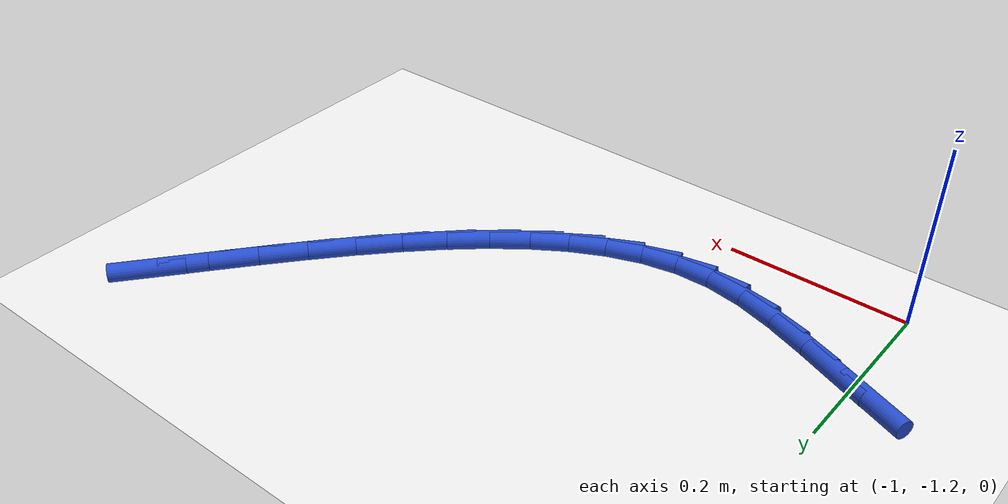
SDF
<sdf version="1.6">
 <world name="default">
  <model name="ground_plane">
   <static>1</static>
   <link name="link">
    <collision name="collision">
     <geometry><plane><normal>0 0 1</normal><size>100 100</size></plane></geometry>
     <surface><friction><ode><mu>100</mu><mu2>50</mu2></ode></friction></surface>
    </collision>
    <visual name="visual">
     <cast_shadows>0</cast_shadows>
     <geometry><plane><normal>0 0 1</normal><size>100 100</size></plane></geometry>
     <material>
      <script><uri>file://media/materials/scripts/gazebo.material</uri><name>Gazebo/WhiteGlow</name></script>
     </material>
    </visual>
   </link>
  </model>
  <model name="line">
   <link name="link_113">
    <pose>-1.0262186633941555 -1.0594914611491453 0.01 0 1.57 -0.38304598263410267</pose>
    <collision name="collision">
     <geometry><cylinder><radius>0.01</radius><length>0.08</length></cylinder></geometry>
    </collision>
    <visual name="visual">
     <material>
      <script><name>Gazebo/Blue</name><uri>file://media/materials/scripts/gazebo.material</uri></script>
     </material>
     <geometry><cylinder><radius>0.01</radius><length>0.08</length></cylinder></geometry>
    </visual>
   </link>
   <link name="link_114">
    <pose>-0.9823153233614119 -1.077182265671292 0.01 0 1.57 -0.38975727046481573</pose>
    <collision name="collision">
     <geometry><cylinder><radius>0.01</radius><length>0.08</length></cylinder></geometry>
    </collision>
    <visual name="visual">
     <material>
      <script><name>Gazebo/Blue</name><uri>file://media/materials/scripts/gazebo.material</uri></script>
     </material>
     <geometry><cylinder><radius>0.01</radius><length>0.08</length></cylinder></geometry>
    </visual>
   </link>
   <link name="link_115">
    <pose>-0.9395639641799146 -1.0947432928200607 0.01 0 1.57 -0.3577677357357396</pose>
    <collision name="collision">
     <geometry><cylinder><radius>0.01</radius><length>0.08</length></cylinder></geometry>
    </collision>
    <visual name="visual">
     <material>
      <script><name>Gazebo/Blue</name><uri>file://media/materials/scripts/gazebo.material</uri></script>
     </material>
     <geometry><cylinder><radius>0.01</radius><length>0.08</length></cylinder></geometry>
    </visual>
   </link>
   <link name="link_116">
    <pose>-0.8978378984906935 -1.11034285192403 0.01 0 1.57 -0.2814989614357672</pose>
    <collision name="collision">
     <geometry><cylinder><radius>0.01</radius><length>0.08</length></cylinder></geometry>
    </collision>
    <visual name="visual">
     <material>
      <script><name>Gazebo/Blue</name><uri>file://media/materials/scripts/gazebo.material</uri></script>
     </material>
     <geometry><cylinder><radius>0.01</radius><length>0.08</length></cylinder></geometry>
    </visual>
   </link>
   <link name="link_117">
    <pose>-0.8570104389347777 -1.1221492523117789 0.01 0 1.57 -0.15311657350316368</pose>
    <collision name="collision">
     <geometry><cylinder><radius>0.01</radius><length>0.08</length></cylinder></geometry>
    </collision>
    <visual name="visual">
     <material>
      <script><name>Gazebo/Blue</name><uri>file://media/materials/scripts/gazebo.material</uri></script>
     </material>
     <geometry><cylinder><radius>0.01</radius><length>0.08</length></cylinder></geometry>
    </visual>
   </link>
   <link name="link_118">
    <pose>-0.816954898153194 -1.1283308033118857 0.01 0 1.57 0.02256877334419839</pose>
    <collision name="collision">
     <geometry><cylinder><radius>0.01</radius><length>0.08</length></cylinder></geometry>
    </collision>
    <visual name="visual">
     <material>
      <script><name>Gazebo/Blue</name><uri>file://media/materials/scripts/gazebo.material</uri></script>
     </material>
     <geometry><cylinder><radius>0.01</radius><length>0.08</length></cylinder></geometry>
    </visual>
   </link>
   <link name="link_119">
    <pose>-0.7775631024608815 -1.1274416278311206 0.01 0 1.57 0.19732239984752878</pose>
    <collision name="collision">
     <geometry><cylinder><radius>0.01</radius><length>0.08</length></cylinder></geometry>
    </collision>
    <visual name="visual">
     <material>
      <script><name>Gazebo/Blue</name><uri>file://media/materials/scripts/gazebo.material</uri></script>
     </material>
     <geometry><cylinder><radius>0.01</radius><length>0.08</length></cylinder></geometry>
    </visual>
   </link>
   <link name="link_120">
    <pose>-0.7388064097582429 -1.1196932381047695 0.01 0 1.57 0.3507635997212483</pose>
    <collision name="collision">
     <geometry><cylinder><radius>0.01</radius><length>0.08</length></cylinder></geometry>
    </collision>
    <visual name="visual">
     <material>
      <script><name>Gazebo/Blue</name><uri>file://media/materials/scripts/gazebo.material</uri></script>
     </material>
     <geometry><cylinder><radius>0.01</radius><length>0.08</length></cylinder></geometry>
    </visual>
   </link>
   <link name="link_121">
    <pose>-0.7006775298330765 -1.105742106569806 0.01 0 1.57 0.4793734201751002</pose>
    <collision name="collision">
     <geometry><cylinder><radius>0.01</radius><length>0.08</length></cylinder></geometry>
    </collision>
    <visual name="visual">
     <material>
      <script><name>Gazebo/Blue</name><uri>file://media/materials/scripts/gazebo.material</uri></script>
     </material>
     <geometry><cylinder><radius>0.01</radius><length>0.08</length></cylinder></geometry>
    </visual>
   </link>
   <link name="link_122">
    <pose>-0.663169172740629 -1.0862447112366598 0.01 0 1.57 0.5840599042252862</pose>
    <collision name="collision">
     <geometry><cylinder><radius>0.01</radius><length>0.08</length></cylinder></geometry>
    </collision>
    <visual name="visual">
     <material>
      <script><name>Gazebo/Blue</name><uri>file://media/materials/scripts/gazebo.material</uri></script>
     </material>
     <geometry><cylinder><radius>0.01</radius><length>0.08</length></cylinder></geometry>
    </visual>
   </link>
   <link name="link_123">
    <pose>-0.6262740485361447 -1.0618575301157578 0.01 0 1.57 0.6677992249285715</pose>
    <collision name="collision">
     <geometry><cylinder><radius>0.01</radius><length>0.08</length></cylinder></geometry>
    </collision>
    <visual name="visual">
     <material>
      <script><name>Gazebo/Blue</name><uri>file://media/materials/scripts/gazebo.material</uri></script>
     </material>
     <geometry><cylinder><radius>0.01</radius><length>0.08</length></cylinder></geometry>
    </visual>
   </link>
   <link name="link_124">
    <pose>-0.58998486727487 -1.0332370412175298 0.01 0 1.57 0.7339879084121903</pose>
    <collision name="collision">
     <geometry><cylinder><radius>0.01</radius><length>0.08</length></cylinder></geometry>
    </collision>
    <visual name="visual">
     <material>
      <script><name>Gazebo/Blue</name><uri>file://media/materials/scripts/gazebo.material</uri></script>
     </material>
     <geometry><cylinder><radius>0.01</radius><length>0.08</length></cylinder></geometry>
    </visual>
   </link>
   <link name="link_125">
    <pose>-0.5542943390120514 -1.001039722552405 0.01 0 1.57 0.7856617072026032</pose>
    <collision name="collision">
     <geometry><cylinder><radius>0.01</radius><length>0.08</length></cylinder></geometry>
    </collision>
    <visual name="visual">
     <material>
      <script><name>Gazebo/Blue</name><uri>file://media/materials/scripts/gazebo.material</uri></script>
     </material>
     <geometry><cylinder><radius>0.01</radius><length>0.08</length></cylinder></geometry>
    </visual>
   </link>
   <link name="link_126">
    <pose>-0.5191951738029336 -0.9659220521308107 0.01 0 1.57 0.8252461295931426</pose>
    <collision name="collision">
     <geometry><cylinder><radius>0.01</radius><length>0.08</length></cylinder></geometry>
    </collision>
    <visual name="visual">
     <material>
      <script><name>Gazebo/Blue</name><uri>file://media/materials/scripts/gazebo.material</uri></script>
     </material>
     <geometry><cylinder><radius>0.01</radius><length>0.08</length></cylinder></geometry>
    </visual>
   </link>
   <link name="link_127">
    <pose>-0.4846800817027635 -0.928540507963177 0.01 0 1.57 0.8545435010828442</pose>
    <collision name="collision">
     <geometry><cylinder><radius>0.01</radius><length>0.08</length></cylinder></geometry>
    </collision>
    <visual name="visual">
     <material>
      <script><name>Gazebo/Blue</name><uri>file://media/materials/scripts/gazebo.material</uri></script>
     </material>
     <geometry><cylinder><radius>0.01</radius><length>0.08</length></cylinder></geometry>
    </visual>
   </link>
   <link name="link_128">
    <pose>-0.45074177276678584 -0.8895515680599312 0.01 0 1.57 0.8747945153450983</pose>
    <collision name="collision">
     <geometry><cylinder><radius>0.01</radius><length>0.08</length></cylinder></geometry>
    </collision>
    <visual name="visual">
     <material>
      <script><name>Gazebo/Blue</name><uri>file://media/materials/scripts/gazebo.material</uri></script>
     </material>
     <geometry><cylinder><radius>0.01</radius><length>0.08</length></cylinder></geometry>
    </visual>
   </link>
   <link name="link_129">
    <pose>-0.4173729570502471 -0.8496117104315026 0.01 0 1.57 0.886741899187744</pose>
    <collision name="collision">
     <geometry><cylinder><radius>0.01</radius><length>0.08</length></cylinder></geometry>
    </collision>
    <visual name="visual">
     <material>
      <script><name>Gazebo/Blue</name><uri>file://media/materials/scripts/gazebo.material</uri></script>
     </material>
     <geometry><cylinder><radius>0.01</radius><length>0.08</length></cylinder></geometry>
    </visual>
   </link>
   <link name="link_130">
    <pose>-0.38456634460839345 -0.8093774130883205 0.01 0 1.57 0.8906667908322026</pose>
    <collision name="collision">
     <geometry><cylinder><radius>0.01</radius><length>0.08</length></cylinder></geometry>
    </collision>
    <visual name="visual">
     <material>
      <script><name>Gazebo/Blue</name><uri>file://media/materials/scripts/gazebo.material</uri></script>
     </material>
     <geometry><cylinder><radius>0.01</radius><length>0.08</length></cylinder></geometry>
    </visual>
   </link>
   <link name="link_131">
    <pose>-0.3523146454964698 -0.7695051540408122 0.01 0 1.57 0.8864725176168147</pose>
    <collision name="collision">
     <geometry><cylinder><radius>0.01</radius><length>0.08</length></cylinder></geometry>
    </collision>
    <visual name="visual">
     <material>
      <script><name>Gazebo/Blue</name><uri>file://media/materials/scripts/gazebo.material</uri></script>
     </material>
     <geometry><cylinder><radius>0.01</radius><length>0.08</length></cylinder></geometry>
    </visual>
   </link>
  </model>
 </world>
</sdf>
